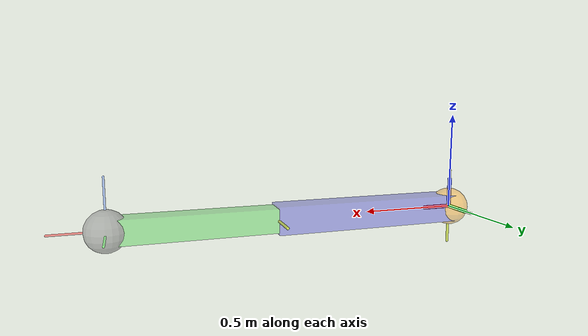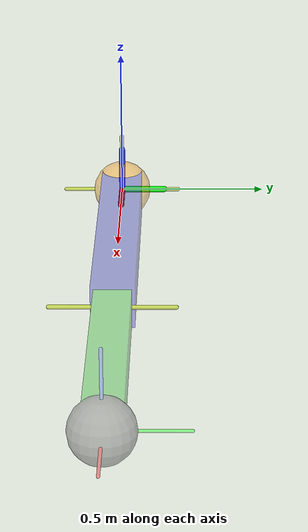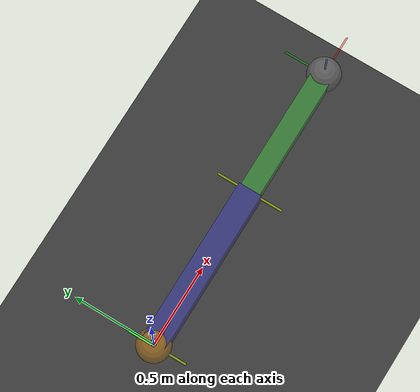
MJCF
<?xml version="1.0" ?>
<mujoco>
    <option gravity="0 0 0"/>
    <asset>
        <texture builtin="checker" height="100" name="texplane" rgb1="0 0 0" rgb2="0.8 0.8 0.8" type="2d" width="100"/>
        <material name="MatPlane" reflectance="0.5" shininess="1" specular="1" texrepeat="60 60" texture="texplane"/>
    </asset>
    <worldbody>
        <light cutoff="100" ambient="0.25 0.25 0.25" diffuse=".7 .7 .7" specular=".85 .85 .85" dir="-0 0 -1.3" directional="true" exponent="1" pos="0 0 0" castshadow="false"/>
        <geom conaffinity="1" condim="4" name="floor" pos="0 0 -3.0" rgba="0.2 0.2 0.2 1" size="40 40 40" type="plane" material="MatPlane" friction="1 0.01 0.001"/>
        <body name="cursor" pos="0 0 0">
            <geom type="sphere" size=".1" mass="0.1" contype="0" conaffinity="0" rgba="1 0.6 0 0.4"/>
            <geom type="capsule" fromto="0 0 0  .15 0 0" size="0.0105" contype="0" conaffinity="0" rgba="1 0 0 1"/>
            <geom type="capsule" fromto="0 0 0  0 .15 0" size="0.0105" contype="0" conaffinity="0" rgba="0 1 0 1"/>
            <geom type="capsule" fromto="0 0 0  0 0 .15" size="0.0105" contype="0" conaffinity="0" rgba=".2 .3 1 1"/>
            <joint name="cursor_x" type="slide" range="-5 5" axis="1 0 0"/>
            <joint name="cursor_y" type="slide" range="-5 5" axis="0 1 0"/>
            <joint name="cursor_z" type="slide" range="-5 5" axis="0 0 1"/>
            <joint name="cursor_p" type="hinge" range="-180 180" axis="0 -1 0"/>
            <joint name="cursor_w" type="hinge" range="-180 180" axis="0 0 1"/>
            <joint name="cursor_r" type="hinge" range="-180 180" axis="1 0 0"/>
        </body>

        <body pos="0 0 0">
            <joint name="j1" type="hinge" axis="0 0 1" range="-180 180"/>
            <geom type="capsule" fromto="0 0 -.2 0 0 0.2" size="0.007" contype="0" conaffinity="0" rgba=".7 .8 0 0.6"/>
            <body pos="0 0 0">
                <geom type="box" size="0.07" fromto="0 0 0 1 0 0" rgba="0.2 0.2 0.8 0.4"/>
                <joint name="j2" type="hinge" axis="0 -1 0" range="-180 180"/>
                <geom type="capsule" fromto="0 -.2 0 0 0.2 0" size="0.007" contype="0" conaffinity="0" rgba=".7 .8 0 .6"/>
                <body pos="1 0 0">
                    <geom type="box" size="0.06" fromto="0 0 0 .8 0 0" rgba="0.2 0.8 0.2 0.4"/>
                    <joint name="j3" type="hinge" axis="0 -1 0" range="-180 180"/>
                    <geom type="capsule" fromto="0 -.2 0 0 0.2 0" size="0.007" contype="0" conaffinity="0" rgba=".7 .8 0 .6"/>
                    <body name="endpt" pos=".8 0 0">
                        <geom type="box" size="0.06" fromto="0 0 0 .1 0 0" contype="0" conaffinity="0" mass="001" rgba="0.2 0.8 0.7 0"/>
                        <joint name="j4" type="hinge" axis="0 1 0" range="-180 180"/>
                        <body pos="0 0 0">
                            <geom type="box" size="0.06" fromto="0 0 0 .1 0 0" contype="0" conaffinity="0" mass="001" rgba="0.2 0.8 0.7 0"/>
                            <joint name="j5" type="hinge" axis="1 0 0" range="-180 180"/>
                            <body pos="0 0 0">
                                <geom type="box" size="0.06" fromto="0 0 0 .1 0 0" contype="0" conaffinity="0" mass="001" rgba="0.2 0.8 0.7 0"/>
                                <geom type="sphere" size=".1" contype="0" conaffinity="0" mass="0.001" rgba=".5 .5 .5 .5"/>
                                <geom type="capsule" fromto="0 0 0  .25 0 0" size="0.005" contype="0" conaffinity="0" mass="0" rgba="1 0 0 .4"/>
                                <geom type="capsule" fromto="0 0 0  0 .25 0" size="0.005" contype="0" conaffinity="0" mass="0" rgba="0 1 0 .4"/>
                                <geom type="capsule" fromto="0 0 0  0 0 .25" size="0.005" contype="0" conaffinity="0" mass="0" rgba=".3 .5 1 .4"/>
                                <joint name="j6" type="hinge" axis="0 0 1" range="-180 180"/>
                            </body>
                        </body>
                    </body>
                </body>
            </body>
        </body>
    </worldbody>
    <actuator>
        <position name="j1" kp="500" kv="100" joint="j1" inheritrange="1"/>
        <position name="j2" kp="500" kv="100" joint="j2" inheritrange="1"/>
        <position name="j3" kp="500" kv="100" joint="j3" inheritrange="1"/>
        <position name="j4" kp="5" kv="1.5" inheritrange="1" joint="j4"/>
        <position name="j5" kp="5" kv="1.5" inheritrange="1" joint="j5"/>
        <position name="j6" kp="5" kv="1.5" inheritrange="1" joint="j6"/>
        <position name="cursor_x" inheritrange="0" kp="5" kv="2" joint="cursor_x"/>
        <position name="cursor_y" inheritrange="0" kp="5" kv="2" joint="cursor_y"/>
        <position name="cursor_z" inheritrange="0" kp="5" kv="2" joint="cursor_z"/>
        <position name="cursor_p" inheritrange="1" kp=".3" kv=".1" joint="cursor_p"/>
        <position name="cursor_w" inheritrange="1" kp=".3" kv=".1" joint="cursor_w"/>
        <position name="cursor_r" inheritrange="1" kp=".3" kv=".1" joint="cursor_r"/>
    </actuator>
</mujoco>
